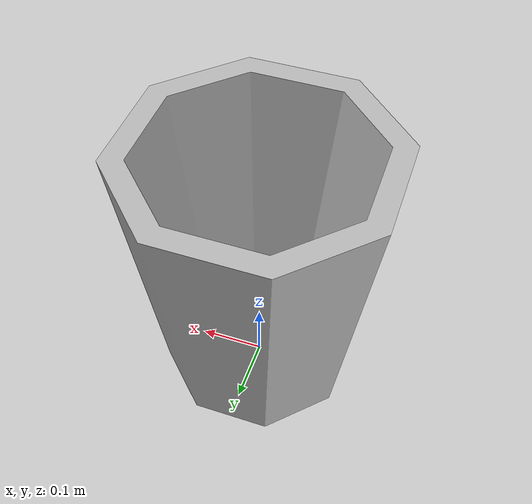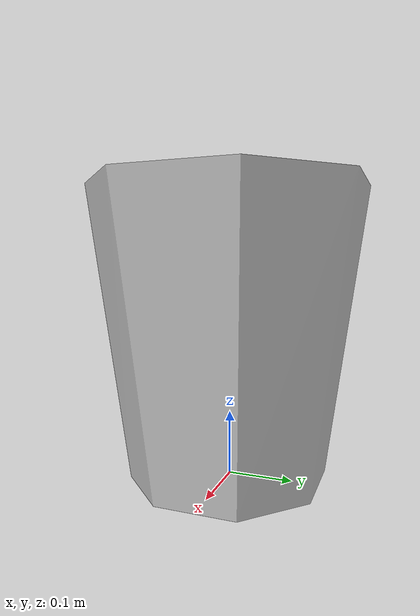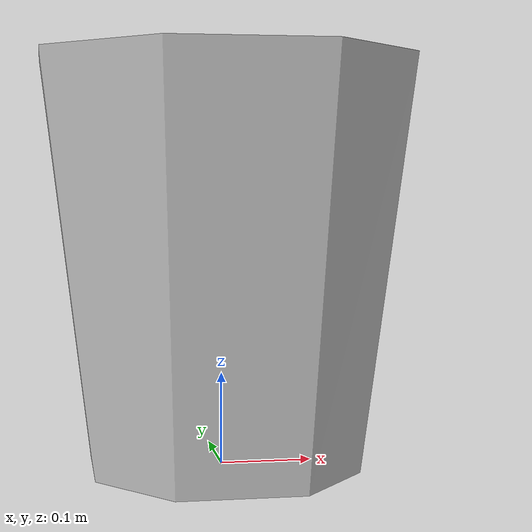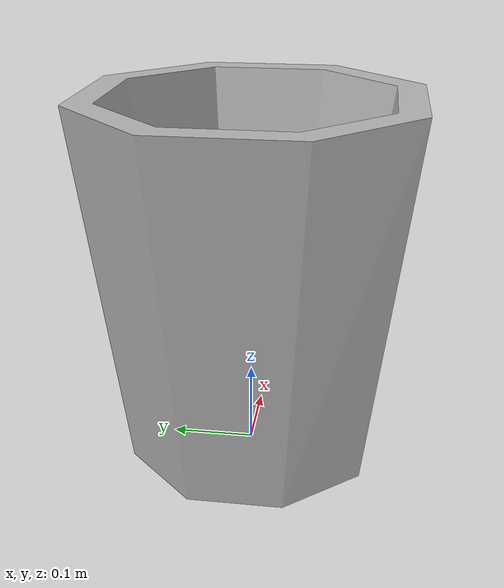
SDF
<?xml version="1.0" ?>
<sdf version="1.6">
  <model name="recycle_bin_plastic">
    <link name="link">

      <inertial>

        <mass>0.1</mass>
        <inertia>
            <ixy>0</ixy>
            <ixz>0</ixz>
            <iyz>0</iyz>
            <ixx>0.05288</ixx>
            <iyy>0.05288</iyy>
            <izz>0.09132</izz>
          </inertia>
      </inertial>

      <collision name="collision">
        <geometry>
          <mesh>
            <uri>model://recycle_bin_plastic/meshes/recycle_bin_plastic.dae</uri>
            <scale>1 1 1</scale>
          </mesh>
        </geometry>

      </collision>

      <visual name="visual">
	    <geometry>
          <mesh>
            <uri>model://recycle_bin_plastic/meshes/recycle_bin_plastic.dae</uri>
          </mesh>
        </geometry>
      <meta> <layer> 1 </layer></meta>
</visual>
    </link>
  </model>
</sdf>
